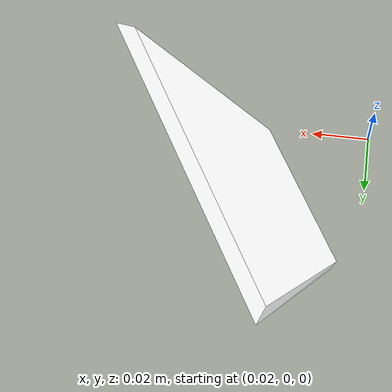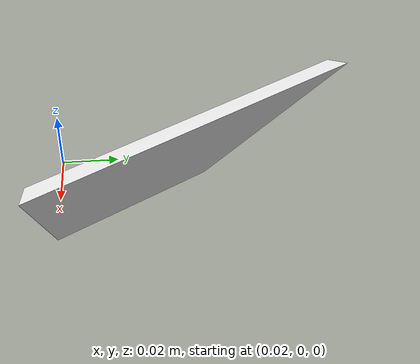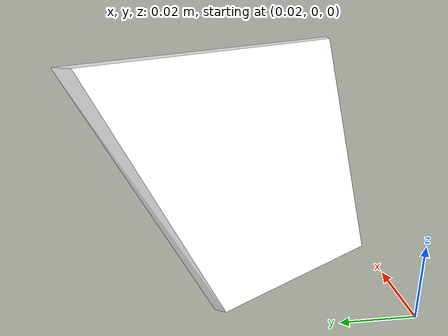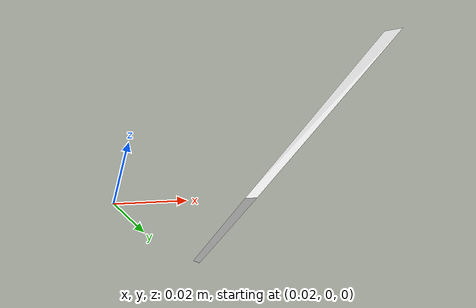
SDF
<?xml version="1.0" ?>
<sdf version="1.7">
  <model name="plate">
    <static>false</static>
    <link name="plate">
      <visual name="visual">
        <geometry>
          <mesh>
            <uri>file:///home/ubuntu/DishBot/src/my_plate_model/plate.obj</uri>
          </mesh>
        </geometry>
        <material>
          <ambient>1.0 1.0 1.0 1</ambient>
          <diffuse>1.0 1.0 1.0 1</diffuse>
          <specular>0.1 0.1 0.1 1</specular>
        </material>
      </visual>

      <collision name="collision_bottom">
        <geometry>
          <cylinder>
            <radius>0.05</radius>
            <length>0.005</length>
          </cylinder>
        </geometry>
        <surface>
          <friction>
            <ode>
              <mu>0.5</mu>
              <mu2>0.5</mu2>
            </ode>
          </friction>
        </surface>
      </collision>

      <collision name="collision1">
        <geometry>
          <mesh>
            <uri>file:///home/ubuntu/DishBot/src/my_plate_model/plate-collision01.obj</uri>
          </mesh>
        </geometry>
      </collision>

      <collision name="collision2">
        <geometry>
          <mesh>
            <uri>file:///home/ubuntu/DishBot/src/my_plate_model/plate-collision02.obj</uri>
          </mesh>
        </geometry>
      </collision>

      <collision name="collision3">
        <geometry>
          <mesh>
            <uri>file:///home/ubuntu/DishBot/src/my_plate_model/plate-collision03.obj</uri>
          </mesh>
        </geometry>
      </collision>

      <collision name="collision4">
        <geometry>
          <mesh>
            <uri>file:///home/ubuntu/DishBot/src/my_plate_model/plate-collision04.obj</uri>
          </mesh>
        </geometry>
      </collision>

      <collision name="collision5">
        <geometry>
          <mesh>
            <uri>file:///home/ubuntu/DishBot/src/my_plate_model/plate-collision05.obj</uri>
          </mesh>
        </geometry>
      </collision>

      <collision name="collision6">
        <geometry>
          <mesh>
            <uri>file:///home/ubuntu/DishBot/src/my_plate_model/plate-collision06.obj</uri>
          </mesh>
        </geometry>
      </collision>

      <inertial>
        <mass>0.5</mass>
        <inertia>
          <ixx>0.005</ixx>
          <iyy>0.005</iyy>
          <izz>0.0072</izz>
        </inertia>
      </inertial>
    </link>
  </model>
</sdf>
